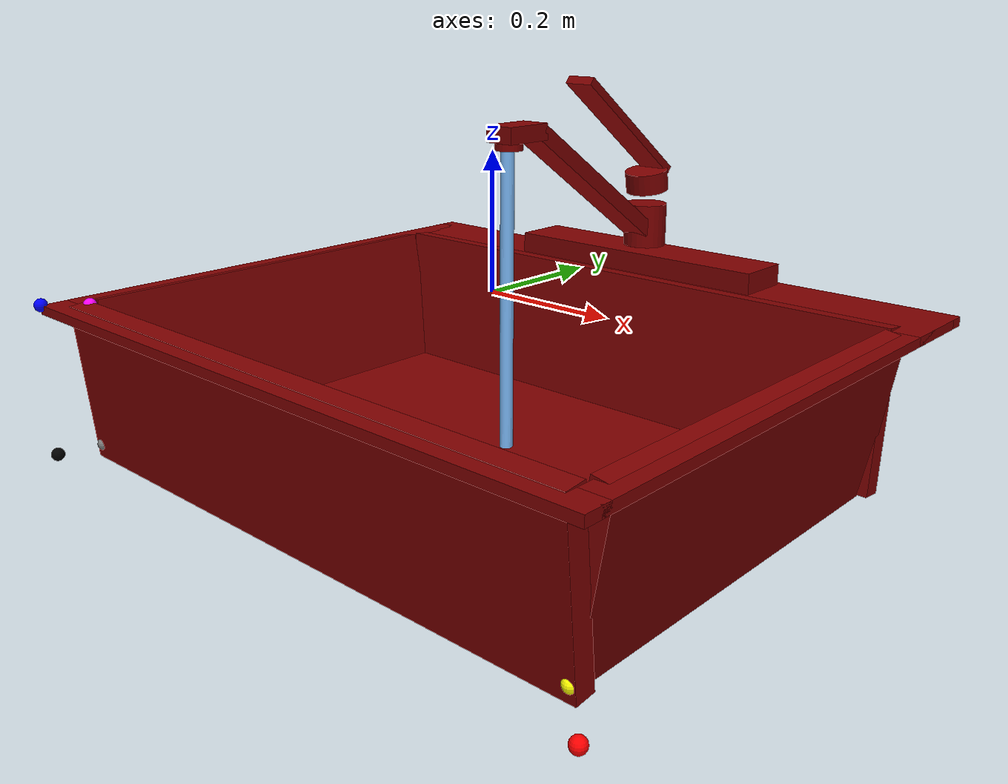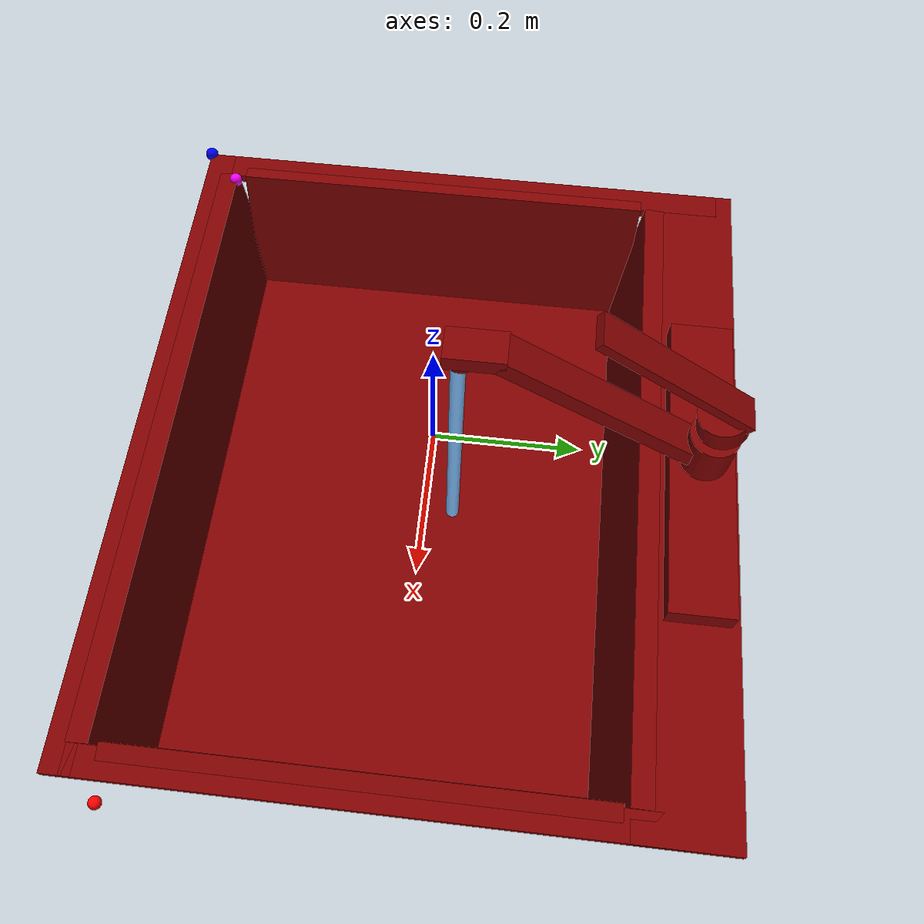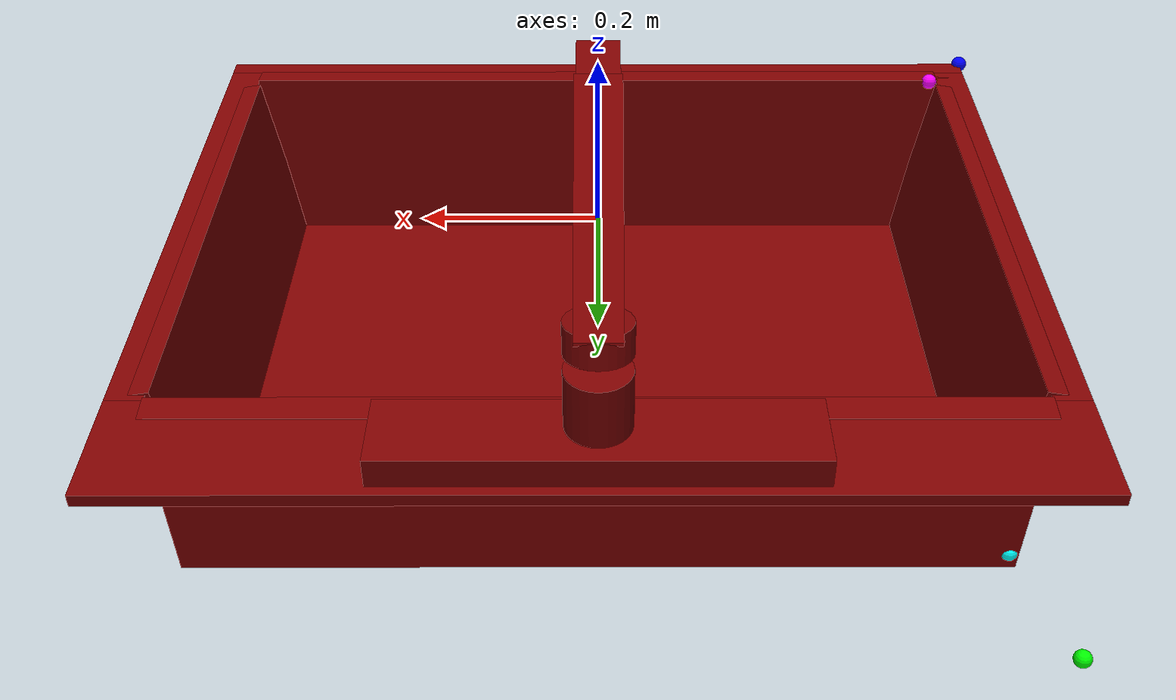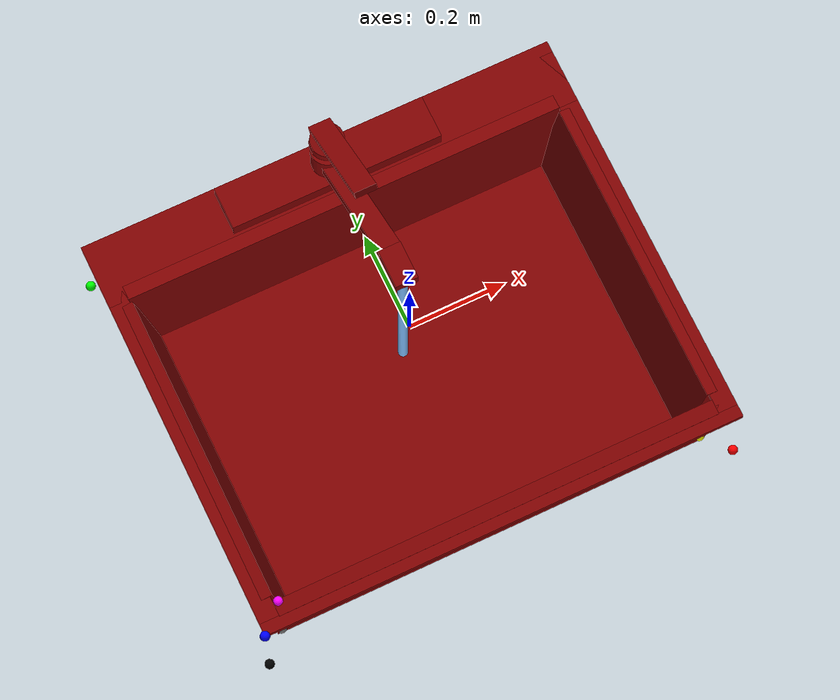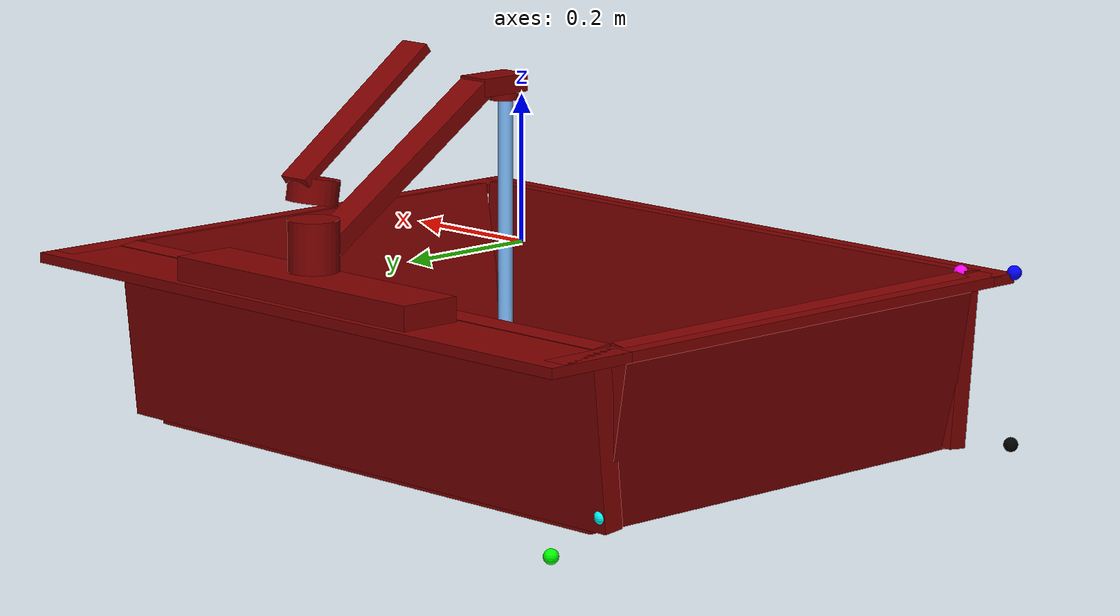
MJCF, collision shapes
<mujoco model="model">
  <compiler angle="radian"/>
  <asset>
    <texture type="2d" name="image0" file="visuals/image0.png"/>
    <material name="kitchen_sink" texture="image0" specular="0.5" shininess="0.25"/>
    <mesh file="visuals/model_0.obj" name="model_0_vis" scale="1 1 1"/>
    <mesh file="visuals/spout_0.obj" name="spout_0_vis" scale="1 1 1"/>
    <mesh file="visuals/handle_0.obj" name="handle_0_vis" scale="1 1 1"/>
  </asset>
  <default>
    <default class="visual">
      <geom conaffinity="0" contype="0" group="1" type="mesh"/>
    </default>
    <default class="collision">
      <geom group="0" rgba="0.5 0 0 0.5" solimp="0.998 0.998 0.001" solref="0.001 2"/>
    </default>
  </default>
  <worldbody>
    <body>
      <!-- exterior bounding box points -->
      <site rgba="0 0 0 1" size="0.01" pos="-0.5 -0.425 -0.2615" name="ext_p0"/>
      <site rgba="1 0 0 1" size="0.01" pos="0.5 -0.425 -0.2615" name="ext_px"/>
      <site rgba="0 1 0 1" size="0.01" pos="-0.5 0.425 -0.2615" name="ext_py"/>
      <site rgba="0 0 1 1" size="0.01" pos="-0.5 -0.425 -0.028" name="ext_pz"/>
      <!-- interior bounding box points -->
      <site rgba="0.5 0.5 0.5 1" size="0.01" pos="-0.45 -0.375 -0.245" name="int_p0"/>
      <site rgba="1 1 0 1" size="0.01" pos="0.45 -0.375 -0.245" name="int_px"/>
      <site rgba="0 1 1 1" size="0.01" pos="-0.45 0.29 -0.245" name="int_py"/>
      <site rgba="1 0 1 1" size="0.01" pos="-0.45 -0.375 -0.028" name="int_pz"/>
      <body name="object">
        <geom solimp="0.998 0.998 0.001" solref="0.001 1" density="100" friction="0.95 0.3 0.1" type="mesh" mesh="model_0_vis" material="kitchen_sink" class="visual"/>
        <!-- Bottom -->
        <geom class="collision" type="box" pos="0 -0.04 -0.26" size="0.42 0.32 0.015" name="bottom"/>
        <!-- Left Wall -->
        <geom class="collision" type="box" pos="-0.45 -0.04 -0.145" size="0.015 0.32 0.12" axisangle="0 1 0 -0.17"/>
        <!-- Right Wall -->
        <geom class="collision" type="box" pos="0.45 -0.04 -0.145" size="0.015 0.32 0.12" axisangle="0 1 0 0.17"/>
        <!-- Back Wall -->
        <geom class="collision" type="box" pos="0 0.29 -0.145" size="0.46 0.015 0.12" axisangle="1 0 0 -0.10"/>
        <!-- Front Wall -->
        <geom class="collision" type="box" pos="0 -0.375 -0.145" size="0.46 0.015 0.12" axisangle="1 0 0 0.10"/>
        <!-- Back Ledge -->
        <geom class="collision" type="box" pos="0 0.356 -0.035" size="0.5 0.068 0.007"/>
        <!-- Front Ledge -->
        <geom class="collision" type="box" pos="0 -0.405 -0.035" size="0.5 0.02 0.007"/>
        <!-- Right Ledge -->
        <geom class="collision" type="box" pos="0.48 0 -0.035" size="0.02 0.4 0.007"/>
        <!-- Left Ledge -->
        <geom class="collision" type="box" pos="-0.48 0 -0.035" size="0.02 0.4 0.007"/>
        <!-- Faucet Base -->
        <geom class="collision" type="box" pos="0 0.368 -0.0117" size="0.222 0.0446 0.0165"/>
        <body name="spout">
          <joint axis="0 0 1" limited="true" name="spout_joint" range="-1.57 1.57" pos="0 0.368 0.045" armature="2" damping="10"/>
          <geom solimp="0.998 0.998 0.001" solref="0.001 1" density="100" friction="0.95 0.3 0.1" type="mesh" mesh="spout_0_vis" material="kitchen_sink" class="visual"/>
          <geom class="collision" type="cylinder" pos="0 0.368 0.045" size="0.034 0.034 0"/>
          <geom class="collision" type="box" pos="0 0.215 0.1295" size="0.023 0.16 0.012" axisangle="1 0 0 -0.59" name="spout_top"/>
          <geom class="collision" type="box" pos="0 0.05 0.22" size="0.023 0.039 0.012"/>
          <geom class="collision" type="cylinder" pos="0 0.0335 0.2025" size="0.02 0.0055 0"/>
          <site type="cylinder" rgba="0.5 0.75 1 1" pos="0.0 0.03 -0.03" size="0.01 0.25" name="water"/>
        </body>
        <body name="handle">
          <joint axis="-1 0 0" limited="true" type="hinge" name="handle_joint" range="0 0.52" pos="0 0.368 0.11" armature="2" damping="10"/>
          <joint axis="0 0 1" limited="true" type="hinge" name="handle_temp_joint" range="-0.79 0.79" pos="0 0.368 0.1165" armature="2" damping="50"/>
          <geom solimp="0.998 0.998 0.001" solref="0.001 1" density="100" friction="0.95 0.3 0.1" type="mesh" mesh="handle_0_vis" material="kitchen_sink" class="visual"/>
          <geom class="collision" type="cylinder" pos="0 0.368 0.1165" size="0.034 0.0165 0" axisangle="1 0 0 0.17"/>
          <geom class="collision" type="box" pos="0 0.293 0.208" size="0.023 0.13 0.0065" axisangle="1 0 0 -0.63" name="handle_main"/>
        </body>
      </body>
    </body>
  </worldbody>
</mujoco>
